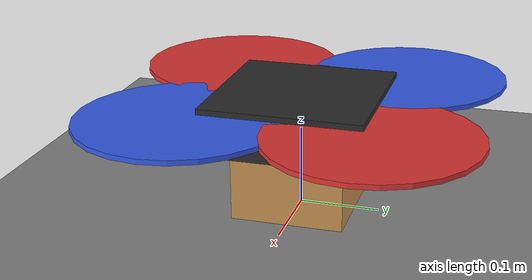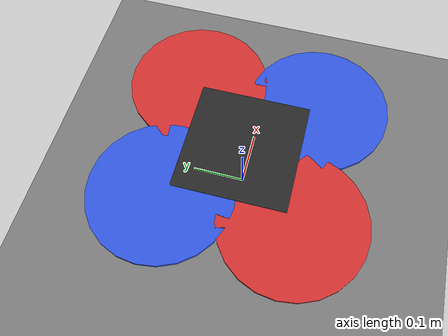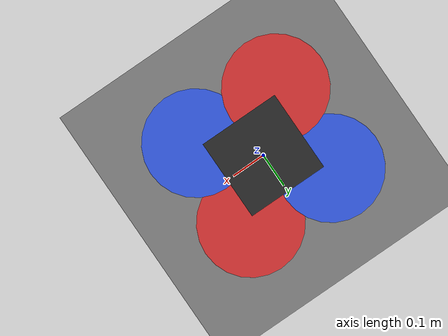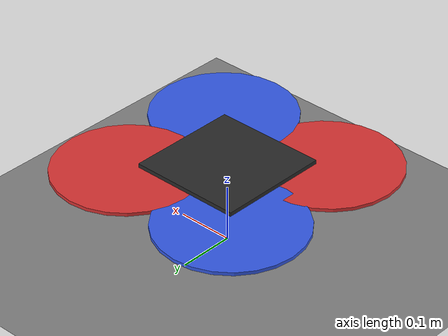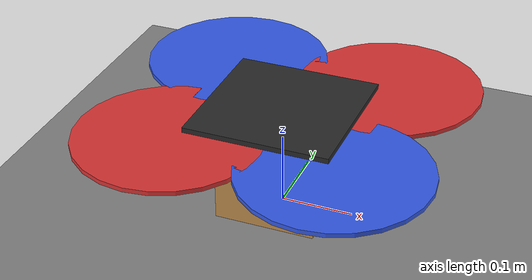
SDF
<?xml version="1.0" ?>
<sdf version="1.9">
  <world name="fx450_qc_1kg">

    <!-- 1 kHz 고정 스텝: 골든 트레이스 기준. 가변 스텝 금지 (PID 이산화가 후방차분). -->
    <physics name="1ms" type="ignored">
      <max_step_size>0.001</max_step_size>
      <real_time_factor>0</real_time_factor>
    </physics>

    <plugin filename="gz-sim-physics-system" name="gz::sim::systems::Physics"/>
    <plugin filename="gz-sim-scene-broadcaster-system" name="gz::sim::systems::SceneBroadcaster"/>
    <plugin filename="gz-sim-user-commands-system" name="gz::sim::systems::UserCommands"/>

    <plugin filename="gz-sim-apply-link-wrench-system" name="gz::sim::systems::ApplyLinkWrench"/>

    <gravity>0 0 -9.81</gravity>
    <light type="directional" name="sun">
      <cast_shadows>true</cast_shadows><pose>0 0 10 0 0 0</pose>
      <diffuse>1 1 1 1</diffuse><specular>0.4 0.4 0.4 1</specular>
      <direction>-0.5 0.1 -0.9</direction>
    </light>

    <model name="ground_plane">
      <static>true</static>
      <link name="link">
        <collision name="collision">
          <geometry><plane><normal>0 0 1</normal><size>80 80</size></plane></geometry>
        </collision>
        <visual name="visual">
          <geometry><plane><normal>0 0 1</normal><size>80 80</size></plane></geometry>
          <material><ambient>0.3 0.3 0.3 1</ambient><diffuse>0.5 0.5 0.5 1</diffuse></material>
        </visual>
      </link>
    </model>

    <model name="fx450">
      <pose>0 0 0.12 0 0 0</pose>
      <link name="base_link">
        <inertial>
          <pose>0 0 -0.0317540 0 0 0</pose>
          <mass>2.2726000</mass>
          <inertia>
            <ixx>1.7109513e-02</ixx><iyy>1.7159513e-02</iyy><izz>2.1236165e-02</izz>
            <ixy>0</ixy><ixz>0</ixz><iyz>0</iyz>
          </inertia>
        </inertial>
        <collision name="body_col">
          <geometry><box><size>0.20 0.20 0.06</size></box></geometry>
        </collision>
        <visual name="body">
          <geometry><box><size>0.20 0.20 0.06</size></box></geometry>
          <material><ambient>0.1 0.1 0.1 1</ambient><diffuse>0.16 0.16 0.16 1</diffuse></material>
        </visual>
        <visual name="package">
          <pose>0 0 -0.0820 0 0 0</pose>
          <geometry><box><size>0.140 0.140 0.140</size></box></geometry>
          <material><ambient>0.55 0.4 0.2 1</ambient><diffuse>0.75 0.55 0.3 1</diffuse></material>
        </visual>
        <collision name="package_col">
          <pose>0 0 -0.0820 0 0 0</pose>
          <geometry><box><size>0.140 0.140 0.140</size></box></geometry>
        </collision>
        <visual name="arm_1">
          <pose>-0.0562 -0.0562 0.0100 0 1.5708 -2.3562</pose>
          <geometry><cylinder><radius>0.009</radius><length>0.1591</length></cylinder></geometry>
          <material><diffuse>0.25 0.25 0.25 1</diffuse></material>
        </visual>
        <visual name="rotor_1">
          <pose>-0.1125 -0.1125 0.0200 0 0 0</pose>
          <geometry><cylinder><radius>0.127</radius><length>0.006</length></cylinder></geometry>
          <material><ambient>0.85 0.2 0.2 1</ambient><diffuse>0.85 0.2 0.2 1</diffuse></material>
        </visual>
        <visual name="arm_2">
          <pose>-0.0562 0.0562 0.0100 0 1.5708 2.3562</pose>
          <geometry><cylinder><radius>0.009</radius><length>0.1591</length></cylinder></geometry>
          <material><diffuse>0.25 0.25 0.25 1</diffuse></material>
        </visual>
        <visual name="rotor_2">
          <pose>-0.1125 0.1125 0.0200 0 0 0</pose>
          <geometry><cylinder><radius>0.127</radius><length>0.006</length></cylinder></geometry>
          <material><ambient>0.2 0.35 0.9 1</ambient><diffuse>0.2 0.35 0.9 1</diffuse></material>
        </visual>
        <visual name="arm_3">
          <pose>0.0562 -0.0562 0.0100 0 1.5708 -0.7854</pose>
          <geometry><cylinder><radius>0.009</radius><length>0.1591</length></cylinder></geometry>
          <material><diffuse>0.25 0.25 0.25 1</diffuse></material>
        </visual>
        <visual name="rotor_3">
          <pose>0.1125 -0.1125 0.0200 0 0 0</pose>
          <geometry><cylinder><radius>0.127</radius><length>0.006</length></cylinder></geometry>
          <material><ambient>0.2 0.35 0.9 1</ambient><diffuse>0.2 0.35 0.9 1</diffuse></material>
        </visual>
        <visual name="arm_4">
          <pose>0.0562 0.0562 0.0100 0 1.5708 0.7854</pose>
          <geometry><cylinder><radius>0.009</radius><length>0.1591</length></cylinder></geometry>
          <material><diffuse>0.25 0.25 0.25 1</diffuse></material>
        </visual>
        <visual name="rotor_4">
          <pose>0.1125 0.1125 0.0200 0 0 0</pose>
          <geometry><cylinder><radius>0.127</radius><length>0.006</length></cylinder></geometry>
          <material><ambient>0.85 0.2 0.2 1</ambient><diffuse>0.85 0.2 0.2 1</diffuse></material>
        </visual>
      </link>

      <!-- 제어기 + 플랜트 접합. 모든 값은 QC_* 환경변수로 덮어쓸 수 있다
           (scripts/run_case.sh 가 그렇게 쓴다 - 월드 파일은 안 건드림). -->
      <plugin filename="qc_gz_controller" name="qc::QcGzController">
        <link>base_link</link>
        <mode>hover</mode>
        <pkgMass>1.0000</pkgMass>
        <profile>precision</profile>
        <armXY>0.112500</armXY>
        <rotorZ>0.020000</rotorZ>
        <comZ>-0.0317540</comZ>
        <mixerTable>measured</mixerTable>
        <hoverZ>1.0</hoverZ>
        <controlRateHz>1000</controlRateHz>
        <logRateHz>200</logRateHz>
        <log>gz_run.csv</log>
      </plugin>
    </model>

  </world>
</sdf>
